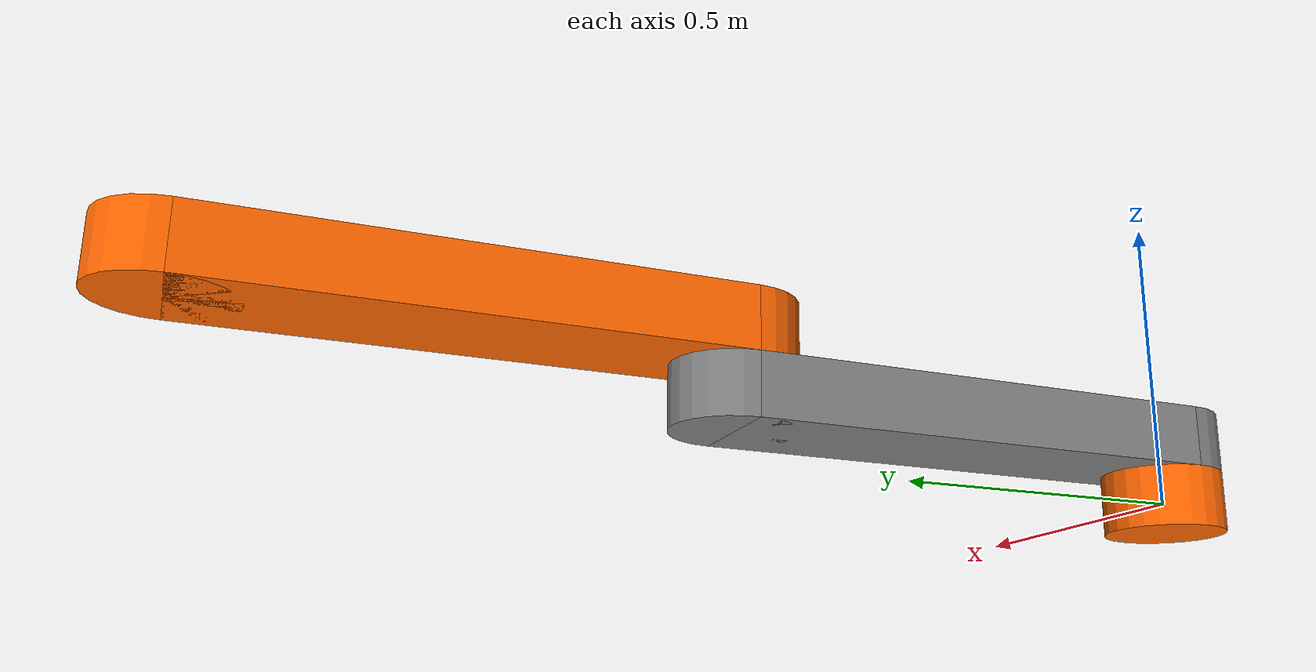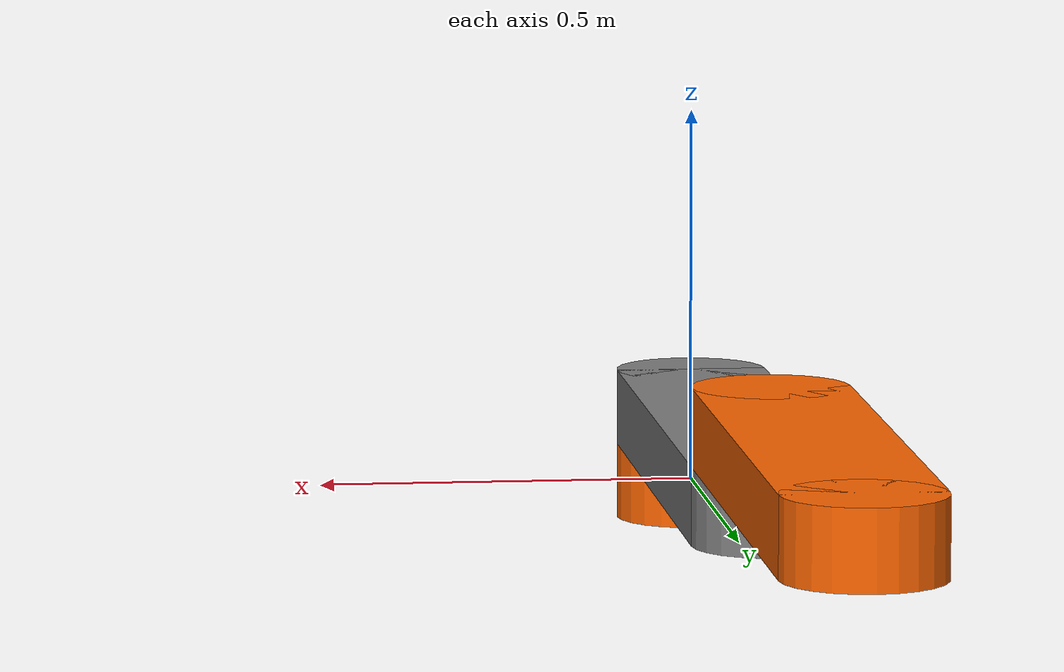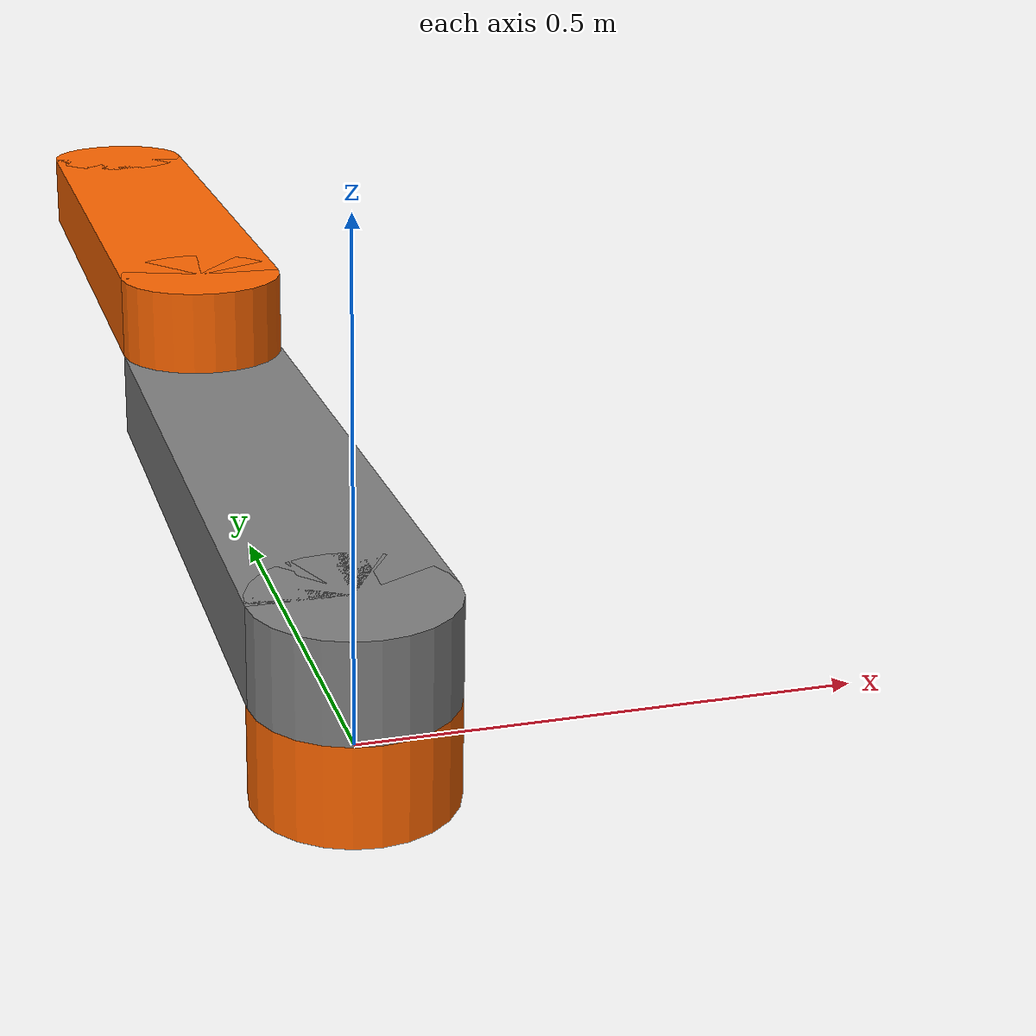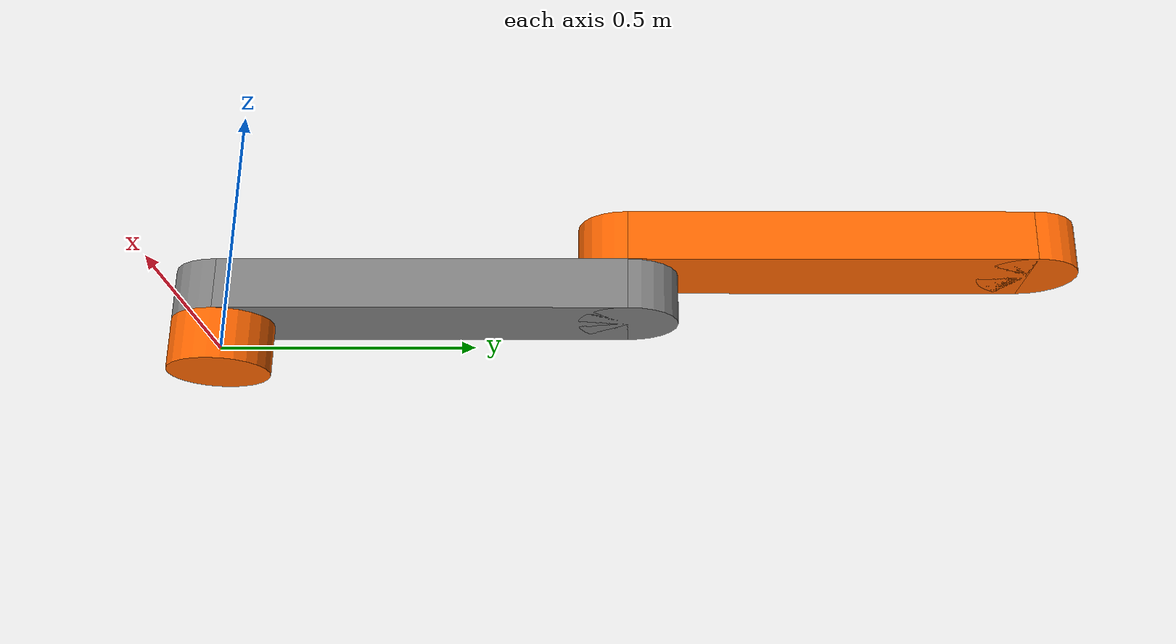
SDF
<?xml version="1.0"?>
<sdf version="1.7">
  <model name="2dofPlanar">
    <!-- Manipulatator base -->
    <link name="2dofPlanarBase">
      <pose>0 0 0 0 0 0</pose>
      <visual name="2dofPlanarBaseVisual">
        <geometry>
          <cylinder>
            <radius>0.1</radius>
            <length>0.1</length>
          </cylinder>
        </geometry>
        <material>
          <ambient>1 0.4 0 1</ambient>
          <diffuse>1 0.4 0 1</diffuse>
          <specular>1 0.4 0 1</specular>
          <emissive>1 0.4 0 1</emissive>
        </material>
      </visual>
      <collision name="2dofPlanarBaseCollision">
        <pose>0 0 0 0 0 0</pose>
        <geometry>
          <cylinder>
            <radius>0.1</radius>
            <length>0.1</length>
          </cylinder>
        </geometry>
      </collision>
    </link>

    <!-- First link  -->
    <link name="2dofPlanarLink1">
      <pose>0 0 0.1 0 0 0</pose>
      <visual name="2dofPlanarLink1Visual1">
        <pose>0 0 0 0 0 0</pose>
        <geometry>
          <cylinder>
            <radius>0.1</radius>
            <length>0.1</length>
          </cylinder>
        </geometry>
        <material>
          <ambient>0.5 0.5 0.5 1</ambient>
          <diffuse>0.5 0.5 0.5 1</diffuse>
          <specular>0.5 0.5 0.5 1</specular>
          <emissive>0.5 0.5 0.5 1</emissive>
        </material>
      </visual>
      <visual name="2dofPlanarLink1Visual2">
        <pose>0 0.4 0 0 0 0</pose>
        <geometry>
          <box>
            <size>0.2 0.8 0.1</size>
          </box>
        </geometry>
        <material>
          <ambient>0.5 0.5 0.5 1</ambient>
          <diffuse>0.5 0.5 0.5 1</diffuse>
          <specular>0.5 0.5 0.5 1</specular>
          <emissive>0.5 0.5 0.5 1</emissive>
        </material>
      </visual>
      <visual name="2dofPlanarLink1Visual3">
        <pose>0 0.8 0 0 0 0</pose>
        <geometry>
          <cylinder>
            <radius>0.1</radius>
            <length>0.1</length>
          </cylinder>
        </geometry>
        <material>
          <ambient>0.5 0.5 0.5 1</ambient>
          <diffuse>0.5 0.5 0.5 1</diffuse>
          <specular>0.5 0.5 0.5 1</specular>
          <emissive>0.5 0.5 0.5 1</emissive>
        </material>
      </visual>
      <collision name="2dofPlanarLink1Collision1">
        <pose>0 0 0 0 0 0</pose>
        <geometry>
          <cylinder>
            <radius>0.1</radius>
            <length>0.1</length>
          </cylinder>
        </geometry>
      </collision>
      <collision name="2dofPlanarLink1Collision2">
        <pose>0 0.4 0 0 0 0</pose>
        <geometry>
          <box>
            <size>0.2 0.8 0.1</size>
          </box>
        </geometry>
      </collision>
      <collision name="2dofPlanarLink1Collision3">
        <pose>0 0.8 0 0 0 0</pose>
        <geometry>
          <cylinder>
            <radius>0.1</radius>
            <length>0.1</length>
          </cylinder>
        </geometry>
      </collision>
    </link>

    <!-- First joint  -->
    <joint name="2dofPlanarJoint1" type="revolute">
      <parent>2dofPlanarBase</parent>
      <child>2dofPlanarLink1</child>
      <axis>
        <xyz>0 0 1</xyz>
        <limit>
          <lower>-3.14159</lower>
          <upper>3.14159</upper>
        </limit>
      </axis>
    </joint>

    <!-- Second link  -->
    <link name="2dofPlanarLink2">
      <pose>0 0.8 0.2 0 0 0</pose>
      <visual name="2dofPlanarLink2Visual1">
        <pose>0 0 0 0 0 0</pose>
        <geometry>
          <cylinder>
            <radius>0.1</radius>
            <length>0.1</length>
          </cylinder>
        </geometry>
        <material>
          <ambient>1 0.4 0 1</ambient>
          <diffuse>1 0.4 0 1</diffuse>
          <specular>1 0.4 0 1</specular>
          <emissive>1 0.4 0 1</emissive>
        </material>
      </visual>
      <visual name="2dofPlanarLink2Visual2">
        <pose>0 0.4 0 0 0 0</pose>
        <geometry>
          <box>
            <size>0.2 0.8 0.1</size>
          </box>
        </geometry>
        <material>
          <ambient>1 0.4 0 1</ambient>
          <diffuse>1 0.4 0 1</diffuse>
          <specular>1 0.4 0 1</specular>
          <emissive>1 0.4 0 1</emissive>
        </material>
      </visual>
      <visual name="2dofPlanarLink2Visual3">
        <pose>0 0.8 0 0 0 0</pose>
        <geometry>
          <cylinder>
            <radius>0.1</radius>
            <length>0.1</length>
          </cylinder>
        </geometry>
        <material>
          <ambient>1 0.4 0 1</ambient>
          <diffuse>1 0.4 0 1</diffuse>
          <specular>1 0.4 0 1</specular>
          <emissive>1 0.4 0 1</emissive>
        </material>
      </visual>
      <collision name="2dofPlanarLink2Collision1">
        <pose>0 0 0 0 0 0</pose>
        <geometry>
          <cylinder>
            <radius>0.1</radius>
            <length>0.1</length>
          </cylinder>
        </geometry>
      </collision>
      <collision name="2dofPlanarLink2Collision2">
        <pose>0 0.4 0 0 0 0</pose>
        <geometry>
          <box>
            <size>0.2 0.8 0.1</size>
          </box>
        </geometry>
      </collision>
      <collision name="2dofPlanarLink2Collision3">
        <pose>0 0.8 0 0 0 0</pose>
        <geometry>
          <cylinder>
            <radius>0.1</radius>
            <length>0.1</length>
          </cylinder>
        </geometry>
      </collision>
    </link>

    <!-- Second joint  -->
    <joint name="2dofPlanarJoint2" type="revolute">
      <parent>2dofPlanarLink1</parent>
      <child>2dofPlanarLink2</child>
      <axis>
        <xyz>0 0 1</xyz>
        <limit>
          <lower>-3.14159</lower>
          <upper>3.14159</upper>
        </limit>
      </axis>
    </joint>

    <!-- Manipulatator end effector -->
    <link name="2dofPlanarEndEffector">
      <pose>0 1.6 0.2 0 0 0</pose>
    </link>

    <!-- End effector joint  -->
    <joint name="2dofPlanarJointEndEffector" type="fixed">
      <parent>2dofPlanarLink2</parent>
      <child>2dofPlanarEndEffector</child>
    </joint>
  </model>
</sdf>
